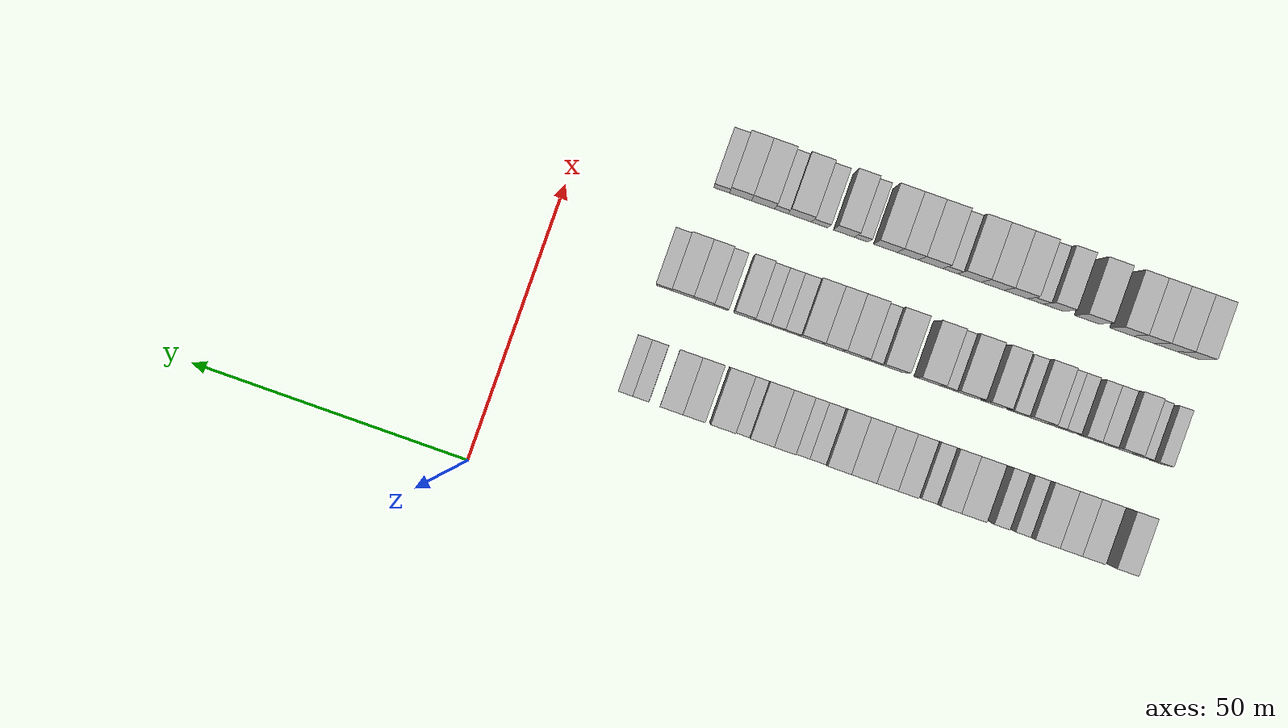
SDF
<sdf version="1.6">
 <world name="default">
  <model name="building_64">
   <static>1</static>
   <pose>25.0000 -109.6221 0 0.000000 0.000000 0.000000</pose>
   <link name="link">
    <pose>0 0 4.50 0 0 0</pose>
    <collision name="collision"><geometry><box><size>10.0000 3.7740 9.0000</size></box></geometry></collision>
    <visual name="visual">
     <cast_shadows>0</cast_shadows>
     <geometry><box><size>10.0000 3.7740 9.0000</size></box></geometry>
     <material>
      <script>
       <uri>model://HANNAS_wall/materials/scripts</uri>
       <uri>model://HANNAS_wall/materials/textures</uri>
       <name>vrc/HANNAS_wall</name>
      </script>
     </material>
    </visual>
   </link>
  </model>
  <model name="building_65">
   <static>1</static>
   <pose>25.0000 -103.6873 0 0.000000 0.000000 0.000000</pose>
   <link name="link">
    <pose>0 0 4.50 0 0 0</pose>
    <collision name="collision"><geometry><box><size>10.0000 4.0955 9.0000</size></box></geometry></collision>
    <visual name="visual">
     <cast_shadows>0</cast_shadows>
     <geometry><box><size>10.0000 4.0955 9.0000</size></box></geometry>
     <material>
      <script>
       <uri>model://HANNAS_wall/materials/scripts</uri>
       <uri>model://HANNAS_wall/materials/textures</uri>
       <name>vrc/HANNAS_wall</name>
      </script>
     </material>
    </visual>
   </link>
  </model>
  <model name="building_66">
   <static>1</static>
   <pose>25.0000 -99.6868 0 0.000000 0.000000 0.000000</pose>
   <link name="link">
    <pose>0 0 4.50 0 0 0</pose>
    <collision name="collision"><geometry><box><size>10.0000 3.9055 9.0000</size></box></geometry></collision>
    <visual name="visual">
     <cast_shadows>0</cast_shadows>
     <geometry><box><size>10.0000 3.9055 9.0000</size></box></geometry>
     <material>
      <script>
       <uri>model://HANNAS_wall/materials/scripts</uri>
       <uri>model://HANNAS_wall/materials/textures</uri>
       <name>vrc/HANNAS_wall</name>
      </script>
     </material>
    </visual>
   </link>
  </model>
  <model name="building_67">
   <static>1</static>
   <pose>25.0000 -95.5836 0 0.000000 0.000000 0.000000</pose>
   <link name="link">
    <pose>0 0 4.50 0 0 0</pose>
    <collision name="collision"><geometry><box><size>10.0000 4.3011 9.0000</size></box></geometry></collision>
    <visual name="visual">
     <cast_shadows>0</cast_shadows>
     <geometry><box><size>10.0000 4.3011 9.0000</size></box></geometry>
     <material>
      <script>
       <uri>model://HANNAS_wall/materials/scripts</uri>
       <uri>model://HANNAS_wall/materials/textures</uri>
       <name>vrc/HANNAS_wall</name>
      </script>
     </material>
    </visual>
   </link>
  </model>
  <model name="building_68">
   <static>1</static>
   <pose>25.0000 -92.0838 0 0.000000 0.000000 0.000000</pose>
   <link name="link">
    <pose>0 0 3.00 0 0 0</pose>
    <collision name="collision"><geometry><box><size>10.0000 2.6984 6.0000</size></box></geometry></collision>
    <visual name="visual">
     <cast_shadows>0</cast_shadows>
     <geometry><box><size>10.0000 2.6984 6.0000</size></box></geometry>
     <material>
      <script>
       <uri>model://HANNAS_wall/materials/scripts</uri>
       <uri>model://HANNAS_wall/materials/textures</uri>
       <name>vrc/HANNAS_wall</name>
      </script>
     </material>
    </visual>
   </link>
  </model>
  <model name="building_69">
   <static>1</static>
   <pose>25.0000 -88.3511 0 0.000000 0.000000 0.000000</pose>
   <link name="link">
    <pose>0 0 3.00 0 0 0</pose>
    <collision name="collision"><geometry><box><size>10.0000 2.7671 6.0000</size></box></geometry></collision>
    <visual name="visual">
     <cast_shadows>0</cast_shadows>
     <geometry><box><size>10.0000 2.7671 6.0000</size></box></geometry>
     <material>
      <script>
       <uri>model://HANNAS_wall/materials/scripts</uri>
       <uri>model://HANNAS_wall/materials/textures</uri>
       <name>vrc/HANNAS_wall</name>
      </script>
     </material>
    </visual>
   </link>
  </model>
  <model name="building_70">
   <static>1</static>
   <pose>25.0000 -82.7500 0 0.000000 0.000000 0.000000</pose>
   <link name="link">
    <pose>0 0 4.50 0 0 0</pose>
    <collision name="collision"><geometry><box><size>10.0000 4.4350 9.0000</size></box></geometry></collision>
    <visual name="visual">
     <cast_shadows>0</cast_shadows>
     <geometry><box><size>10.0000 4.4350 9.0000</size></box></geometry>
     <material>
      <script>
       <uri>model://HANNAS_wall/materials/scripts</uri>
       <uri>model://HANNAS_wall/materials/textures</uri>
       <name>vrc/HANNAS_wall</name>
      </script>
     </material>
    </visual>
   </link>
  </model>
  <model name="building_71">
   <static>1</static>
   <pose>25.0000 -78.7082 0 0.000000 0.000000 0.000000</pose>
   <link name="link">
    <pose>0 0 4.50 0 0 0</pose>
    <collision name="collision"><geometry><box><size>10.0000 3.6486 9.0000</size></box></geometry></collision>
    <visual name="visual">
     <cast_shadows>0</cast_shadows>
     <geometry><box><size>10.0000 3.6486 9.0000</size></box></geometry>
     <material>
      <script>
       <uri>model://HANNAS_wall/materials/scripts</uri>
       <uri>model://HANNAS_wall/materials/textures</uri>
       <name>vrc/HANNAS_wall</name>
      </script>
     </material>
    </visual>
   </link>
  </model>
  <model name="building_72">
   <static>1</static>
   <pose>25.0000 -75.4955 0 0.000000 0.000000 0.000000</pose>
   <link name="link">
    <pose>0 0 3.00 0 0 0</pose>
    <collision name="collision"><geometry><box><size>10.0000 2.7766 6.0000</size></box></geometry></collision>
    <visual name="visual">
     <cast_shadows>0</cast_shadows>
     <geometry><box><size>10.0000 2.7766 6.0000</size></box></geometry>
     <material>
      <script>
       <uri>model://HANNAS_wall/materials/scripts</uri>
       <uri>model://HANNAS_wall/materials/textures</uri>
       <name>vrc/HANNAS_wall</name>
      </script>
     </material>
    </visual>
   </link>
  </model>
  <model name="building_73">
   <static>1</static>
   <pose>25.0000 -71.2920 0 0.000000 0.000000 0.000000</pose>
   <link name="link">
    <pose>0 0 4.50 0 0 0</pose>
    <collision name="collision"><geometry><box><size>10.0000 3.6304 9.0000</size></box></geometry></collision>
    <visual name="visual">
     <cast_shadows>0</cast_shadows>
     <geometry><box><size>10.0000 3.6304 9.0000</size></box></geometry>
     <material>
      <script>
       <uri>model://HANNAS_wall/materials/scripts</uri>
       <uri>model://HANNAS_wall/materials/textures</uri>
       <name>vrc/HANNAS_wall</name>
      </script>
     </material>
    </visual>
   </link>
  </model>
  <model name="building_74">
   <static>1</static>
   <pose>25.0000 -67.5900 0 0.000000 0.000000 0.000000</pose>
   <link name="link">
    <pose>0 0 4.50 0 0 0</pose>
    <collision name="collision"><geometry><box><size>10.0000 3.7736 9.0000</size></box></geometry></collision>
    <visual name="visual">
     <cast_shadows>0</cast_shadows>
     <geometry><box><size>10.0000 3.7736 9.0000</size></box></geometry>
     <material>
      <script>
       <uri>model://HANNAS_wall/materials/scripts</uri>
       <uri>model://HANNAS_wall/materials/textures</uri>
       <name>vrc/HANNAS_wall</name>
      </script>
     </material>
    </visual>
   </link>
  </model>
  <model name="building_75">
   <static>1</static>
   <pose>25.0000 -63.4945 0 0.000000 0.000000 0.000000</pose>
   <link name="link">
    <pose>0 0 4.50 0 0 0</pose>
    <collision name="collision"><geometry><box><size>10.0000 4.4175 9.0000</size></box></geometry></collision>
    <visual name="visual">
     <cast_shadows>0</cast_shadows>
     <geometry><box><size>10.0000 4.4175 9.0000</size></box></geometry>
     <material>
      <script>
       <uri>model://HANNAS_wall/materials/scripts</uri>
       <uri>model://HANNAS_wall/materials/textures</uri>
       <name>vrc/HANNAS_wall</name>
      </script>
     </material>
    </visual>
   </link>
  </model>
  <model name="building_76">
   <static>1</static>
   <pose>25.0000 -59.2358 0 0.000000 0.000000 0.000000</pose>
   <link name="link">
    <pose>0 0 4.50 0 0 0</pose>
    <collision name="collision"><geometry><box><size>10.0000 4.0998 9.0000</size></box></geometry></collision>
    <visual name="visual">
     <cast_shadows>0</cast_shadows>
     <geometry><box><size>10.0000 4.0998 9.0000</size></box></geometry>
     <material>
      <script>
       <uri>model://HANNAS_wall/materials/scripts</uri>
       <uri>model://HANNAS_wall/materials/textures</uri>
       <name>vrc/HANNAS_wall</name>
      </script>
     </material>
    </visual>
   </link>
  </model>
  <model name="building_77">
   <static>1</static>
   <pose>25.0000 -55.7464 0 0.000000 0.000000 0.000000</pose>
   <link name="link">
    <pose>0 0 3.00 0 0 0</pose>
    <collision name="collision"><geometry><box><size>10.0000 2.8791 6.0000</size></box></geometry></collision>
    <visual name="visual">
     <cast_shadows>0</cast_shadows>
     <geometry><box><size>10.0000 2.8791 6.0000</size></box></geometry>
     <material>
      <script>
       <uri>model://HANNAS_wall/materials/scripts</uri>
       <uri>model://HANNAS_wall/materials/textures</uri>
       <name>vrc/HANNAS_wall</name>
      </script>
     </material>
    </visual>
   </link>
  </model>
  <model name="building_78">
   <static>1</static>
   <pose>25.0000 -52.9494 0 0.000000 0.000000 0.000000</pose>
   <link name="link">
    <pose>0 0 3.00 0 0 0</pose>
    <collision name="collision"><geometry><box><size>10.0000 2.7149 6.0000</size></box></geometry></collision>
    <visual name="visual">
     <cast_shadows>0</cast_shadows>
     <geometry><box><size>10.0000 2.7149 6.0000</size></box></geometry>
     <material>
      <script>
       <uri>model://HANNAS_wall/materials/scripts</uri>
       <uri>model://HANNAS_wall/materials/textures</uri>
       <name>vrc/HANNAS_wall</name>
      </script>
     </material>
    </visual>
   </link>
  </model>
  <model name="building_79">
   <static>1</static>
   <pose>25.0000 -49.6958 0 0.000000 0.000000 0.000000</pose>
   <link name="link">
    <pose>0 0 4.50 0 0 0</pose>
    <collision name="collision"><geometry><box><size>10.0000 3.7923 9.0000</size></box></geometry></collision>
    <visual name="visual">
     <cast_shadows>0</cast_shadows>
     <geometry><box><size>10.0000 3.7923 9.0000</size></box></geometry>
     <material>
      <script>
       <uri>model://HANNAS_wall/materials/scripts</uri>
       <uri>model://HANNAS_wall/materials/textures</uri>
       <name>vrc/HANNAS_wall</name>
      </script>
     </material>
    </visual>
   </link>
  </model>
  <model name="building_80">
   <static>1</static>
   <pose>25.0000 -45.7286 0 0.000000 0.000000 0.000000</pose>
   <link name="link">
    <pose>0 0 4.50 0 0 0</pose>
    <collision name="collision"><geometry><box><size>10.0000 4.1421 9.0000</size></box></geometry></collision>
    <visual name="visual">
     <cast_shadows>0</cast_shadows>
     <geometry><box><size>10.0000 4.1421 9.0000</size></box></geometry>
     <material>
      <script>
       <uri>model://HANNAS_wall/materials/scripts</uri>
       <uri>model://HANNAS_wall/materials/textures</uri>
       <name>vrc/HANNAS_wall</name>
      </script>
     </material>
    </visual>
   </link>
  </model>
  <model name="building_81">
   <static>1</static>
   <pose>25.0000 -42.3730 0 0.000000 0.000000 0.000000</pose>
   <link name="link">
    <pose>0 0 3.00 0 0 0</pose>
    <collision name="collision"><geometry><box><size>10.0000 2.5691 6.0000</size></box></geometry></collision>
    <visual name="visual">
     <cast_shadows>0</cast_shadows>
     <geometry><box><size>10.0000 2.5691 6.0000</size></box></geometry>
     <material>
      <script>
       <uri>model://HANNAS_wall/materials/scripts</uri>
       <uri>model://HANNAS_wall/materials/textures</uri>
       <name>vrc/HANNAS_wall</name>
      </script>
     </material>
    </visual>
   </link>
  </model>
  <model name="building_82">
   <static>1</static>
   <pose>25.0000 -38.9134 0 0.000000 0.000000 0.000000</pose>
   <link name="link">
    <pose>0 0 4.50 0 0 0</pose>
    <collision name="collision"><geometry><box><size>10.0000 4.3500 9.0000</size></box></geometry></collision>
    <visual name="visual">
     <cast_shadows>0</cast_shadows>
     <geometry><box><size>10.0000 4.3500 9.0000</size></box></geometry>
     <material>
      <script>
       <uri>model://HANNAS_wall/materials/scripts</uri>
       <uri>model://HANNAS_wall/materials/textures</uri>
       <name>vrc/HANNAS_wall</name>
      </script>
     </material>
    </visual>
   </link>
  </model>
  <model name="building_83">
   <static>1</static>
   <pose>25.0000 -33.7965 0 0.000000 0.000000 0.000000</pose>
   <link name="link">
    <pose>0 0 4.50 0 0 0</pose>
    <collision name="collision"><geometry><box><size>10.0000 3.8838 9.0000</size></box></geometry></collision>
    <visual name="visual">
     <cast_shadows>0</cast_shadows>
     <geometry><box><size>10.0000 3.8838 9.0000</size></box></geometry>
     <material>
      <script>
       <uri>model://HANNAS_wall/materials/scripts</uri>
       <uri>model://HANNAS_wall/materials/textures</uri>
       <name>vrc/HANNAS_wall</name>
      </script>
     </material>
    </visual>
   </link>
  </model>
  <model name="building_84">
   <static>1</static>
   <pose>25.0000 -29.8450 0 0.000000 0.000000 0.000000</pose>
   <link name="link">
    <pose>0 0 4.50 0 0 0</pose>
    <collision name="collision"><geometry><box><size>10.0000 4.0192 9.0000</size></box></geometry></collision>
    <visual name="visual">
     <cast_shadows>0</cast_shadows>
     <geometry><box><size>10.0000 4.0192 9.0000</size></box></geometry>
     <material>
      <script>
       <uri>model://HANNAS_wall/materials/scripts</uri>
       <uri>model://HANNAS_wall/materials/textures</uri>
       <name>vrc/HANNAS_wall</name>
      </script>
     </material>
    </visual>
   </link>
  </model>
  <model name="building_85">
   <static>1</static>
   <pose>25.0000 -24.4008 0 0.000000 0.000000 0.000000</pose>
   <link name="link">
    <pose>0 0 3.00 0 0 0</pose>
    <collision name="collision"><geometry><box><size>10.0000 2.8693 6.0000</size></box></geometry></collision>
    <visual name="visual">
     <cast_shadows>0</cast_shadows>
     <geometry><box><size>10.0000 2.8693 6.0000</size></box></geometry>
     <material>
      <script>
       <uri>model://HANNAS_wall/materials/scripts</uri>
       <uri>model://HANNAS_wall/materials/textures</uri>
       <name>vrc/HANNAS_wall</name>
      </script>
     </material>
    </visual>
   </link>
  </model>
  <model name="building_86">
   <static>1</static>
   <pose>25.0000 -21.6892 0 0.000000 0.000000 0.000000</pose>
   <link name="link">
    <pose>0 0 3.00 0 0 0</pose>
    <collision name="collision"><geometry><box><size>10.0000 2.5539 6.0000</size></box></geometry></collision>
    <visual name="visual">
     <cast_shadows>0</cast_shadows>
     <geometry><box><size>10.0000 2.5539 6.0000</size></box></geometry>
     <material>
      <script>
       <uri>model://HANNAS_wall/materials/scripts</uri>
       <uri>model://HANNAS_wall/materials/textures</uri>
       <name>vrc/HANNAS_wall</name>
      </script>
     </material>
    </visual>
   </link>
  </model>
  <model name="building_226">
   <static>1</static>
   <pose>44.0000 -110.7635 0 0.000000 0.000000 0.000000</pose>
   <link name="link">
    <pose>0 0 3.00 0 0 0</pose>
    <collision name="collision"><geometry><box><size>10.0000 2.4472 6.0000</size></box></geometry></collision>
    <visual name="visual">
     <cast_shadows>0</cast_shadows>
     <geometry><box><size>10.0000 2.4472 6.0000</size></box></geometry>
     <material>
      <script>
       <uri>model://HANNAS_wall/materials/scripts</uri>
       <uri>model://HANNAS_wall/materials/textures</uri>
       <name>vrc/HANNAS_wall</name>
      </script>
     </material>
    </visual>
   </link>
  </model>
  <model name="building_227">
   <static>1</static>
   <pose>44.0000 -107.2013 0 0.000000 0.000000 0.000000</pose>
   <link name="link">
    <pose>0 0 3.00 0 0 0</pose>
    <collision name="collision"><geometry><box><size>10.0000 2.6774 6.0000</size></box></geometry></collision>
    <visual name="visual">
     <cast_shadows>0</cast_shadows>
     <geometry><box><size>10.0000 2.6774 6.0000</size></box></geometry>
     <material>
      <script>
       <uri>model://HANNAS_wall/materials/scripts</uri>
       <uri>model://HANNAS_wall/materials/textures</uri>
       <name>vrc/HANNAS_wall</name>
      </script>
     </material>
    </visual>
   </link>
  </model>
  <model name="building_228">
   <static>1</static>
   <pose>44.0000 -104.0514 0 0.000000 0.000000 0.000000</pose>
   <link name="link">
    <pose>0 0 4.50 0 0 0</pose>
    <collision name="collision"><geometry><box><size>10.0000 3.6223 9.0000</size></box></geometry></collision>
    <visual name="visual">
     <cast_shadows>0</cast_shadows>
     <geometry><box><size>10.0000 3.6223 9.0000</size></box></geometry>
     <material>
      <script>
       <uri>model://HANNAS_wall/materials/scripts</uri>
       <uri>model://HANNAS_wall/materials/textures</uri>
       <name>vrc/HANNAS_wall</name>
      </script>
     </material>
    </visual>
   </link>
  </model>
  <model name="building_229">
   <static>1</static>
   <pose>44.0000 -100.8225 0 0.000000 0.000000 0.000000</pose>
   <link name="link">
    <pose>0 0 3.00 0 0 0</pose>
    <collision name="collision"><geometry><box><size>10.0000 2.8355 6.0000</size></box></geometry></collision>
    <visual name="visual">
     <cast_shadows>0</cast_shadows>
     <geometry><box><size>10.0000 2.8355 6.0000</size></box></geometry>
     <material>
      <script>
       <uri>model://HANNAS_wall/materials/scripts</uri>
       <uri>model://HANNAS_wall/materials/textures</uri>
       <name>vrc/HANNAS_wall</name>
      </script>
     </material>
    </visual>
   </link>
  </model>
  <model name="building_230">
   <static>1</static>
   <pose>44.0000 -98.0344 0 0.000000 0.000000 0.000000</pose>
   <link name="link">
    <pose>0 0 3.00 0 0 0</pose>
    <collision name="collision"><geometry><box><size>10.0000 2.7408 6.0000</size></box></geometry></collision>
    <visual name="visual">
     <cast_shadows>0</cast_shadows>
     <geometry><box><size>10.0000 2.7408 6.0000</size></box></geometry>
     <material>
      <script>
       <uri>model://HANNAS_wall/materials/scripts</uri>
       <uri>model://HANNAS_wall/materials/textures</uri>
       <name>vrc/HANNAS_wall</name>
      </script>
     </material>
    </visual>
   </link>
  </model>
  <model name="building_231">
   <static>1</static>
   <pose>44.0000 -94.4016 0 0.000000 0.000000 0.000000</pose>
   <link name="link">
    <pose>0 0 3.00 0 0 0</pose>
    <collision name="collision"><geometry><box><size>10.0000 2.5247 6.0000</size></box></geometry></collision>
    <visual name="visual">
     <cast_shadows>0</cast_shadows>
     <geometry><box><size>10.0000 2.5247 6.0000</size></box></geometry>
     <material>
      <script>
       <uri>model://HANNAS_wall/materials/scripts</uri>
       <uri>model://HANNAS_wall/materials/textures</uri>
       <name>vrc/HANNAS_wall</name>
      </script>
     </material>
    </visual>
   </link>
  </model>
  <model name="building_232">
   <static>1</static>
   <pose>44.0000 -91.9055 0 0.000000 0.000000 0.000000</pose>
   <link name="link">
    <pose>0 0 3.00 0 0 0</pose>
    <collision name="collision"><geometry><box><size>10.0000 2.4676 6.0000</size></box></geometry></collision>
    <visual name="visual">
     <cast_shadows>0</cast_shadows>
     <geometry><box><size>10.0000 2.4676 6.0000</size></box></geometry>
     <material>
      <script>
       <uri>model://HANNAS_wall/materials/scripts</uri>
       <uri>model://HANNAS_wall/materials/textures</uri>
       <name>vrc/HANNAS_wall</name>
      </script>
     </material>
    </visual>
   </link>
  </model>
  <model name="building_233">
   <static>1</static>
   <pose>44.0000 -88.6048 0 0.000000 0.000000 0.000000</pose>
   <link name="link">
    <pose>0 0 4.50 0 0 0</pose>
    <collision name="collision"><geometry><box><size>10.0000 4.1337 9.0000</size></box></geometry></collision>
    <visual name="visual">
     <cast_shadows>0</cast_shadows>
     <geometry><box><size>10.0000 4.1337 9.0000</size></box></geometry>
     <material>
      <script>
       <uri>model://HANNAS_wall/materials/scripts</uri>
       <uri>model://HANNAS_wall/materials/textures</uri>
       <name>vrc/HANNAS_wall</name>
      </script>
     </material>
    </visual>
   </link>
  </model>
  <model name="building_234">
   <static>1</static>
   <pose>44.0000 -85.1858 0 0.000000 0.000000 0.000000</pose>
   <link name="link">
    <pose>0 0 3.00 0 0 0</pose>
    <collision name="collision"><geometry><box><size>10.0000 2.7043 6.0000</size></box></geometry></collision>
    <visual name="visual">
     <cast_shadows>0</cast_shadows>
     <geometry><box><size>10.0000 2.7043 6.0000</size></box></geometry>
     <material>
      <script>
       <uri>model://HANNAS_wall/materials/scripts</uri>
       <uri>model://HANNAS_wall/materials/textures</uri>
       <name>vrc/HANNAS_wall</name>
      </script>
     </material>
    </visual>
   </link>
  </model>
  <model name="building_235">
   <static>1</static>
   <pose>44.0000 -80.9944 0 0.000000 0.000000 0.000000</pose>
   <link name="link">
    <pose>0 0 4.50 0 0 0</pose>
    <collision name="collision"><geometry><box><size>10.0000 3.6784 9.0000</size></box></geometry></collision>
    <visual name="visual">
     <cast_shadows>0</cast_shadows>
     <geometry><box><size>10.0000 3.6784 9.0000</size></box></geometry>
     <material>
      <script>
       <uri>model://HANNAS_wall/materials/scripts</uri>
       <uri>model://HANNAS_wall/materials/textures</uri>
       <name>vrc/HANNAS_wall</name>
      </script>
     </material>
    </visual>
   </link>
  </model>
  <model name="building_236">
   <static>1</static>
   <pose>44.0000 -75.9364 0 0.000000 0.000000 0.000000</pose>
   <link name="link">
    <pose>0 0 4.50 0 0 0</pose>
    <collision name="collision"><geometry><box><size>10.0000 4.4376 9.0000</size></box></geometry></collision>
    <visual name="visual">
     <cast_shadows>0</cast_shadows>
     <geometry><box><size>10.0000 4.4376 9.0000</size></box></geometry>
     <material>
      <script>
       <uri>model://HANNAS_wall/materials/scripts</uri>
       <uri>model://HANNAS_wall/materials/textures</uri>
       <name>vrc/HANNAS_wall</name>
      </script>
     </material>
    </visual>
   </link>
  </model>
  <model name="building_237">
   <static>1</static>
   <pose>44.0000 -72.5169 0 0.000000 0.000000 0.000000</pose>
   <link name="link">
    <pose>0 0 3.00 0 0 0</pose>
    <collision name="collision"><geometry><box><size>10.0000 2.4015 6.0000</size></box></geometry></collision>
    <visual name="visual">
     <cast_shadows>0</cast_shadows>
     <geometry><box><size>10.0000 2.4015 6.0000</size></box></geometry>
     <material>
      <script>
       <uri>model://HANNAS_wall/materials/scripts</uri>
       <uri>model://HANNAS_wall/materials/textures</uri>
       <name>vrc/HANNAS_wall</name>
      </script>
     </material>
    </visual>
   </link>
  </model>
  <model name="building_238">
   <static>1</static>
   <pose>44.0000 -69.1546 0 0.000000 0.000000 0.000000</pose>
   <link name="link">
    <pose>0 0 4.50 0 0 0</pose>
    <collision name="collision"><geometry><box><size>10.0000 4.3231 9.0000</size></box></geometry></collision>
    <visual name="visual">
     <cast_shadows>0</cast_shadows>
     <geometry><box><size>10.0000 4.3231 9.0000</size></box></geometry>
     <material>
      <script>
       <uri>model://HANNAS_wall/materials/scripts</uri>
       <uri>model://HANNAS_wall/materials/textures</uri>
       <name>vrc/HANNAS_wall</name>
      </script>
     </material>
    </visual>
   </link>
  </model>
  <model name="building_239">
   <static>1</static>
   <pose>44.0000 -62.7959 0 0.000000 0.000000 0.000000</pose>
   <link name="link">
    <pose>0 0 4.50 0 0 0</pose>
    <collision name="collision"><geometry><box><size>10.0000 4.3944 9.0000</size></box></geometry></collision>
    <visual name="visual">
     <cast_shadows>0</cast_shadows>
     <geometry><box><size>10.0000 4.3944 9.0000</size></box></geometry>
     <material>
      <script>
       <uri>model://HANNAS_wall/materials/scripts</uri>
       <uri>model://HANNAS_wall/materials/textures</uri>
       <name>vrc/HANNAS_wall</name>
      </script>
     </material>
    </visual>
   </link>
  </model>
  <model name="building_240">
   <static>1</static>
   <pose>44.0000 -59.2972 0 0.000000 0.000000 0.000000</pose>
   <link name="link">
    <pose>0 0 3.00 0 0 0</pose>
    <collision name="collision"><geometry><box><size>10.0000 2.6030 6.0000</size></box></geometry></collision>
    <visual name="visual">
     <cast_shadows>0</cast_shadows>
     <geometry><box><size>10.0000 2.6030 6.0000</size></box></geometry>
     <material>
      <script>
       <uri>model://HANNAS_wall/materials/scripts</uri>
       <uri>model://HANNAS_wall/materials/textures</uri>
       <name>vrc/HANNAS_wall</name>
      </script>
     </material>
    </visual>
   </link>
  </model>
  <model name="building_241">
   <static>1</static>
   <pose>44.0000 -55.9504 0 0.000000 0.000000 0.000000</pose>
   <link name="link">
    <pose>0 0 4.50 0 0 0</pose>
    <collision name="collision"><geometry><box><size>10.0000 4.0905 9.0000</size></box></geometry></collision>
    <visual name="visual">
     <cast_shadows>0</cast_shadows>
     <geometry><box><size>10.0000 4.0905 9.0000</size></box></geometry>
     <material>
      <script>
       <uri>model://HANNAS_wall/materials/scripts</uri>
       <uri>model://HANNAS_wall/materials/textures</uri>
       <name>vrc/HANNAS_wall</name>
      </script>
     </material>
    </visual>
   </link>
  </model>
  <model name="building_242">
   <static>1</static>
   <pose>44.0000 -52.0184 0 0.000000 0.000000 0.000000</pose>
   <link name="link">
    <pose>0 0 4.50 0 0 0</pose>
    <collision name="collision"><geometry><box><size>10.0000 3.7735 9.0000</size></box></geometry></collision>
    <visual name="visual">
     <cast_shadows>0</cast_shadows>
     <geometry><box><size>10.0000 3.7735 9.0000</size></box></geometry>
     <material>
      <script>
       <uri>model://HANNAS_wall/materials/scripts</uri>
       <uri>model://HANNAS_wall/materials/textures</uri>
       <name>vrc/HANNAS_wall</name>
      </script>
     </material>
    </visual>
   </link>
  </model>
  <model name="building_243">
   <static>1</static>
   <pose>44.0000 -48.1277 0 0.000000 0.000000 0.000000</pose>
   <link name="link">
    <pose>0 0 4.50 0 0 0</pose>
    <collision name="collision"><geometry><box><size>10.0000 4.0078 9.0000</size></box></geometry></collision>
    <visual name="visual">
     <cast_shadows>0</cast_shadows>
     <geometry><box><size>10.0000 4.0078 9.0000</size></box></geometry>
     <material>
      <script>
       <uri>model://HANNAS_wall/materials/scripts</uri>
       <uri>model://HANNAS_wall/materials/textures</uri>
       <name>vrc/HANNAS_wall</name>
      </script>
     </material>
    </visual>
   </link>
  </model>
  <model name="building_244">
   <static>1</static>
   <pose>44.0000 -44.7148 0 0.000000 0.000000 0.000000</pose>
   <link name="link">
    <pose>0 0 3.00 0 0 0</pose>
    <collision name="collision"><geometry><box><size>10.0000 2.8179 6.0000</size></box></geometry></collision>
    <visual name="visual">
     <cast_shadows>0</cast_shadows>
     <geometry><box><size>10.0000 2.8179 6.0000</size></box></geometry>
     <material>
      <script>
       <uri>model://HANNAS_wall/materials/scripts</uri>
       <uri>model://HANNAS_wall/materials/textures</uri>
       <name>vrc/HANNAS_wall</name>
      </script>
     </material>
    </visual>
   </link>
  </model>
  <model name="building_245">
   <static>1</static>
   <pose>44.0000 -41.9692 0 0.000000 0.000000 0.000000</pose>
   <link name="link">
    <pose>0 0 3.00 0 0 0</pose>
    <collision name="collision"><geometry><box><size>10.0000 2.6734 6.0000</size></box></geometry></collision>
    <visual name="visual">
     <cast_shadows>0</cast_shadows>
     <geometry><box><size>10.0000 2.6734 6.0000</size></box></geometry>
     <material>
      <script>
       <uri>model://HANNAS_wall/materials/scripts</uri>
       <uri>model://HANNAS_wall/materials/textures</uri>
       <name>vrc/HANNAS_wall</name>
      </script>
     </material>
    </visual>
   </link>
  </model>
  <model name="building_246">
   <static>1</static>
   <pose>44.0000 -39.2762 0 0.000000 0.000000 0.000000</pose>
   <link name="link">
    <pose>0 0 3.00 0 0 0</pose>
    <collision name="collision"><geometry><box><size>10.0000 2.7127 6.0000</size></box></geometry></collision>
    <visual name="visual">
     <cast_shadows>0</cast_shadows>
     <geometry><box><size>10.0000 2.7127 6.0000</size></box></geometry>
     <material>
      <script>
       <uri>model://HANNAS_wall/materials/scripts</uri>
       <uri>model://HANNAS_wall/materials/textures</uri>
       <name>vrc/HANNAS_wall</name>
      </script>
     </material>
    </visual>
   </link>
  </model>
  <model name="building_247">
   <static>1</static>
   <pose>44.0000 -36.1088 0 0.000000 0.000000 0.000000</pose>
   <link name="link">
    <pose>0 0 4.50 0 0 0</pose>
    <collision name="collision"><geometry><box><size>10.0000 3.6220 9.0000</size></box></geometry></collision>
    <visual name="visual">
     <cast_shadows>0</cast_shadows>
     <geometry><box><size>10.0000 3.6220 9.0000</size></box></geometry>
     <material>
      <script>
       <uri>model://HANNAS_wall/materials/scripts</uri>
       <uri>model://HANNAS_wall/materials/textures</uri>
       <name>vrc/HANNAS_wall</name>
      </script>
     </material>
    </visual>
   </link>
  </model>
  <model name="building_248">
   <static>1</static>
   <pose>44.0000 -32.0017 0 0.000000 0.000000 0.000000</pose>
   <link name="link">
    <pose>0 0 3.00 0 0 0</pose>
    <collision name="collision"><geometry><box><size>10.0000 2.5923 6.0000</size></box></geometry></collision>
    <visual name="visual">
     <cast_shadows>0</cast_shadows>
     <geometry><box><size>10.0000 2.5923 6.0000</size></box></geometry>
     <material>
      <script>
       <uri>model://HANNAS_wall/materials/scripts</uri>
       <uri>model://HANNAS_wall/materials/textures</uri>
       <name>vrc/HANNAS_wall</name>
      </script>
     </material>
    </visual>
   </link>
  </model>
  <model name="building_249">
   <static>1</static>
   <pose>44.0000 -28.8916 0 0.000000 0.000000 0.000000</pose>
   <link name="link">
    <pose>0 0 4.50 0 0 0</pose>
    <collision name="collision"><geometry><box><size>10.0000 3.6279 9.0000</size></box></geometry></collision>
    <visual name="visual">
     <cast_shadows>0</cast_shadows>
     <geometry><box><size>10.0000 3.6279 9.0000</size></box></geometry>
     <material>
      <script>
       <uri>model://HANNAS_wall/materials/scripts</uri>
       <uri>model://HANNAS_wall/materials/textures</uri>
       <name>vrc/HANNAS_wall</name>
      </script>
     </material>
    </visual>
   </link>
  </model>
  <model name="building_250">
   <static>1</static>
   <pose>44.0000 -25.1684 0 0.000000 0.000000 0.000000</pose>
   <link name="link">
    <pose>0 0 4.50 0 0 0</pose>
    <collision name="collision"><geometry><box><size>10.0000 3.8186 9.0000</size></box></geometry></collision>
    <visual name="visual">
     <cast_shadows>0</cast_shadows>
     <geometry><box><size>10.0000 3.8186 9.0000</size></box></geometry>
     <material>
      <script>
       <uri>model://HANNAS_wall/materials/scripts</uri>
       <uri>model://HANNAS_wall/materials/textures</uri>
       <name>vrc/HANNAS_wall</name>
      </script>
     </material>
    </visual>
   </link>
  </model>
  <model name="building_251">
   <static>1</static>
   <pose>44.0000 -21.8153 0 0.000000 0.000000 0.000000</pose>
   <link name="link">
    <pose>0 0 3.00 0 0 0</pose>
    <collision name="collision"><geometry><box><size>10.0000 2.8876 6.0000</size></box></geometry></collision>
    <visual name="visual">
     <cast_shadows>0</cast_shadows>
     <geometry><box><size>10.0000 2.8876 6.0000</size></box></geometry>
     <material>
      <script>
       <uri>model://HANNAS_wall/materials/scripts</uri>
       <uri>model://HANNAS_wall/materials/textures</uri>
       <name>vrc/HANNAS_wall</name>
      </script>
     </material>
    </visual>
   </link>
  </model>
  <model name="building_408">
   <static>1</static>
   <pose>63.0000 -109.9310 0 0.000000 0.000000 0.000000</pose>
   <link name="link">
    <pose>0 0 4.50 0 0 0</pose>
    <collision name="collision"><geometry><box><size>10.0000 3.8343 9.0000</size></box></geometry></collision>
    <visual name="visual">
     <cast_shadows>0</cast_shadows>
     <geometry><box><size>10.0000 3.8343 9.0000</size></box></geometry>
     <material>
      <script>
       <uri>model://HANNAS_wall/materials/scripts</uri>
       <uri>model://HANNAS_wall/materials/textures</uri>
       <name>vrc/HANNAS_wall</name>
      </script>
     </material>
    </visual>
   </link>
  </model>
  <model name="building_409">
   <static>1</static>
   <pose>63.0000 -105.9161 0 0.000000 0.000000 0.000000</pose>
   <link name="link">
    <pose>0 0 4.50 0 0 0</pose>
    <collision name="collision"><geometry><box><size>10.0000 4.1956 9.0000</size></box></geometry></collision>
    <visual name="visual">
     <cast_shadows>0</cast_shadows>
     <geometry><box><size>10.0000 4.1956 9.0000</size></box></geometry>
     <material>
      <script>
       <uri>model://HANNAS_wall/materials/scripts</uri>
       <uri>model://HANNAS_wall/materials/textures</uri>
       <name>vrc/HANNAS_wall</name>
      </script>
     </material>
    </visual>
   </link>
  </model>
  <model name="building_410">
   <static>1</static>
   <pose>63.0000 -101.8284 0 0.000000 0.000000 0.000000</pose>
   <link name="link">
    <pose>0 0 4.50 0 0 0</pose>
    <collision name="collision"><geometry><box><size>10.0000 3.9796 9.0000</size></box></geometry></collision>
    <visual name="visual">
     <cast_shadows>0</cast_shadows>
     <geometry><box><size>10.0000 3.9796 9.0000</size></box></geometry>
     <material>
      <script>
       <uri>model://HANNAS_wall/materials/scripts</uri>
       <uri>model://HANNAS_wall/materials/textures</uri>
       <name>vrc/HANNAS_wall</name>
      </script>
     </material>
    </visual>
   </link>
  </model>
  <model name="building_411">
   <static>1</static>
   <pose>63.0000 -97.7929 0 0.000000 0.000000 0.000000</pose>
   <link name="link">
    <pose>0 0 4.50 0 0 0</pose>
    <collision name="collision"><geometry><box><size>10.0000 4.0914 9.0000</size></box></geometry></collision>
    <visual name="visual">
     <cast_shadows>0</cast_shadows>
     <geometry><box><size>10.0000 4.0914 9.0000</size></box></geometry>
     <material>
      <script>
       <uri>model://HANNAS_wall/materials/scripts</uri>
       <uri>model://HANNAS_wall/materials/textures</uri>
       <name>vrc/HANNAS_wall</name>
      </script>
     </material>
    </visual>
   </link>
  </model>
  <model name="building_412">
   <static>1</static>
   <pose>63.0000 -91.5379 0 0.000000 0.000000 0.000000</pose>
   <link name="link">
    <pose>0 0 4.50 0 0 0</pose>
    <collision name="collision"><geometry><box><size>10.0000 4.4186 9.0000</size></box></geometry></collision>
    <visual name="visual">
     <cast_shadows>0</cast_shadows>
     <geometry><box><size>10.0000 4.4186 9.0000</size></box></geometry>
     <material>
      <script>
       <uri>model://HANNAS_wall/materials/scripts</uri>
       <uri>model://HANNAS_wall/materials/textures</uri>
       <name>vrc/HANNAS_wall</name>
      </script>
     </material>
    </visual>
   </link>
  </model>
  <model name="building_413">
   <static>1</static>
   <pose>63.0000 -85.4947 0 0.000000 0.000000 0.000000</pose>
   <link name="link">
    <pose>0 0 4.50 0 0 0</pose>
    <collision name="collision"><geometry><box><size>10.0000 3.6678 9.0000</size></box></geometry></collision>
    <visual name="visual">
     <cast_shadows>0</cast_shadows>
     <geometry><box><size>10.0000 3.6678 9.0000</size></box></geometry>
     <material>
      <script>
       <uri>model://HANNAS_wall/materials/scripts</uri>
       <uri>model://HANNAS_wall/materials/textures</uri>
       <name>vrc/HANNAS_wall</name>
      </script>
     </material>
    </visual>
   </link>
  </model>
  <model name="building_414">
   <static>1</static>
   <pose>63.0000 -82.2575 0 0.000000 0.000000 0.000000</pose>
   <link name="link">
    <pose>0 0 3.00 0 0 0</pose>
    <collision name="collision"><geometry><box><size>10.0000 2.8066 6.0000</size></box></geometry></collision>
    <visual name="visual">
     <cast_shadows>0</cast_shadows>
     <geometry><box><size>10.0000 2.8066 6.0000</size></box></geometry>
     <material>
      <script>
       <uri>model://HANNAS_wall/materials/scripts</uri>
       <uri>model://HANNAS_wall/materials/textures</uri>
       <name>vrc/HANNAS_wall</name>
      </script>
     </material>
    </visual>
   </link>
  </model>
  <model name="building_415">
   <static>1</static>
   <pose>63.0000 -78.6810 0 0.000000 0.000000 0.000000</pose>
   <link name="link">
    <pose>0 0 4.50 0 0 0</pose>
    <collision name="collision"><geometry><box><size>10.0000 4.3464 9.0000</size></box></geometry></collision>
    <visual name="visual">
     <cast_shadows>0</cast_shadows>
     <geometry><box><size>10.0000 4.3464 9.0000</size></box></geometry>
     <material>
      <script>
       <uri>model://HANNAS_wall/materials/scripts</uri>
       <uri>model://HANNAS_wall/materials/textures</uri>
       <name>vrc/HANNAS_wall</name>
      </script>
     </material>
    </visual>
   </link>
  </model>
  <model name="building_416">
   <static>1</static>
   <pose>63.0000 -74.4384 0 0.000000 0.000000 0.000000</pose>
   <link name="link">
    <pose>0 0 4.50 0 0 0</pose>
    <collision name="collision"><geometry><box><size>10.0000 4.1387 9.0000</size></box></geometry></collision>
    <visual name="visual">
     <cast_shadows>0</cast_shadows>
     <geometry><box><size>10.0000 4.1387 9.0000</size></box></geometry>
     <material>
      <script>
       <uri>model://HANNAS_wall/materials/scripts</uri>
       <uri>model://HANNAS_wall/materials/textures</uri>
       <name>vrc/HANNAS_wall</name>
      </script>
     </material>
    </visual>
   </link>
  </model>
  <model name="building_417">
   <static>1</static>
   <pose>63.0000 -70.2422 0 0.000000 0.000000 0.000000</pose>
   <link name="link">
    <pose>0 0 4.50 0 0 0</pose>
    <collision name="collision"><geometry><box><size>10.0000 4.2538 9.0000</size></box></geometry></collision>
    <visual name="visual">
     <cast_shadows>0</cast_shadows>
     <geometry><box><size>10.0000 4.2538 9.0000</size></box></geometry>
     <material>
      <script>
       <uri>model://HANNAS_wall/materials/scripts</uri>
       <uri>model://HANNAS_wall/materials/textures</uri>
       <name>vrc/HANNAS_wall</name>
      </script>
     </material>
    </visual>
   </link>
  </model>
  <model name="building_418">
   <static>1</static>
   <pose>63.0000 -66.7744 0 0.000000 0.000000 0.000000</pose>
   <link name="link">
    <pose>0 0 3.00 0 0 0</pose>
    <collision name="collision"><geometry><box><size>10.0000 2.6817 6.0000</size></box></geometry></collision>
    <visual name="visual">
     <cast_shadows>0</cast_shadows>
     <geometry><box><size>10.0000 2.6817 6.0000</size></box></geometry>
     <material>
      <script>
       <uri>model://HANNAS_wall/materials/scripts</uri>
       <uri>model://HANNAS_wall/materials/textures</uri>
       <name>vrc/HANNAS_wall</name>
      </script>
     </material>
    </visual>
   </link>
  </model>
  <model name="building_419">
   <static>1</static>
   <pose>63.0000 -63.2305 0 0.000000 0.000000 0.000000</pose>
   <link name="link">
    <pose>0 0 4.50 0 0 0</pose>
    <collision name="collision"><geometry><box><size>10.0000 4.4062 9.0000</size></box></geometry></collision>
    <visual name="visual">
     <cast_shadows>0</cast_shadows>
     <geometry><box><size>10.0000 4.4062 9.0000</size></box></geometry>
     <material>
      <script>
       <uri>model://HANNAS_wall/materials/scripts</uri>
       <uri>model://HANNAS_wall/materials/textures</uri>
       <name>vrc/HANNAS_wall</name>
      </script>
     </material>
    </visual>
   </link>
  </model>
  <model name="building_420">
   <static>1</static>
   <pose>63.0000 -59.1016 0 0.000000 0.000000 0.000000</pose>
   <link name="link">
    <pose>0 0 4.50 0 0 0</pose>
    <collision name="collision"><geometry><box><size>10.0000 3.8515 9.0000</size></box></geometry></collision>
    <visual name="visual">
     <cast_shadows>0</cast_shadows>
     <geometry><box><size>10.0000 3.8515 9.0000</size></box></geometry>
     <material>
      <script>
       <uri>model://HANNAS_wall/materials/scripts</uri>
       <uri>model://HANNAS_wall/materials/textures</uri>
       <name>vrc/HANNAS_wall</name>
      </script>
     </material>
    </visual>
   </link>
  </model>
  <model name="building_421">
   <static>1</static>
   <pose>63.0000 -55.0577 0 0.000000 0.000000 0.000000</pose>
   <link name="link">
    <pose>0 0 4.50 0 0 0</pose>
    <collision name="collision"><geometry><box><size>10.0000 4.2364 9.0000</size></box></geometry></collision>
    <visual name="visual">
     <cast_shadows>0</cast_shadows>
     <geometry><box><size>10.0000 4.2364 9.0000</size></box></geometry>
     <material>
      <script>
       <uri>model://HANNAS_wall/materials/scripts</uri>
       <uri>model://HANNAS_wall/materials/textures</uri>
       <name>vrc/HANNAS_wall</name>
      </script>
     </material>
    </visual>
   </link>
  </model>
  <model name="building_422">
   <static>1</static>
   <pose>63.0000 -50.7193 0 0.000000 0.000000 0.000000</pose>
   <link name="link">
    <pose>0 0 3.00 0 0 0</pose>
    <collision name="collision"><geometry><box><size>10.0000 2.4404 6.0000</size></box></geometry></collision>
    <visual name="visual">
     <cast_shadows>0</cast_shadows>
     <geometry><box><size>10.0000 2.4404 6.0000</size></box></geometry>
     <material>
      <script>
       <uri>model://HANNAS_wall/materials/scripts</uri>
       <uri>model://HANNAS_wall/materials/textures</uri>
       <name>vrc/HANNAS_wall</name>
      </script>
     </material>
    </visual>
   </link>
  </model>
  <model name="building_423">
   <static>1</static>
   <pose>63.0000 -47.5919 0 0.000000 0.000000 0.000000</pose>
   <link name="link">
    <pose>0 0 4.50 0 0 0</pose>
    <collision name="collision"><geometry><box><size>10.0000 3.8143 9.0000</size></box></geometry></collision>
    <visual name="visual">
     <cast_shadows>0</cast_shadows>
     <geometry><box><size>10.0000 3.8143 9.0000</size></box></geometry>
     <material>
      <script>
       <uri>model://HANNAS_wall/materials/scripts</uri>
       <uri>model://HANNAS_wall/materials/textures</uri>
       <name>vrc/HANNAS_wall</name>
      </script>
     </material>
    </visual>
   </link>
  </model>
  <model name="building_424">
   <static>1</static>
   <pose>63.0000 -43.1931 0 0.000000 0.000000 0.000000</pose>
   <link name="link">
    <pose>0 0 3.00 0 0 0</pose>
    <collision name="collision"><geometry><box><size>10.0000 2.9834 6.0000</size></box></geometry></collision>
    <visual name="visual">
     <cast_shadows>0</cast_shadows>
     <geometry><box><size>10.0000 2.9834 6.0000</size></box></geometry>
     <material>
      <script>
       <uri>model://HANNAS_wall/materials/scripts</uri>
       <uri>model://HANNAS_wall/materials/textures</uri>
       <name>vrc/HANNAS_wall</name>
      </script>
     </material>
    </visual>
   </link>
  </model>
  <model name="building_425">
   <static>1</static>
   <pose>63.0000 -39.5755 0 0.000000 0.000000 0.000000</pose>
   <link name="link">
    <pose>0 0 4.50 0 0 0</pose>
    <collision name="collision"><geometry><box><size>10.0000 4.2518 9.0000</size></box></geometry></collision>
    <visual name="visual">
     <cast_shadows>0</cast_shadows>
     <geometry><box><size>10.0000 4.2518 9.0000</size></box></geometry>
     <material>
      <script>
       <uri>model://HANNAS_wall/materials/scripts</uri>
       <uri>model://HANNAS_wall/materials/textures</uri>
       <name>vrc/HANNAS_wall</name>
      </script>
     </material>
    </visual>
   </link>
  </model>
  <model name="building_426">
   <static>1</static>
   <pose>63.0000 -36.2420 0 0.000000 0.000000 0.000000</pose>
   <link name="link">
    <pose>0 0 3.00 0 0 0</pose>
    <collision name="collision"><geometry><box><size>10.0000 2.4152 6.0000</size></box></geometry></collision>
    <visual name="visual">
     <cast_shadows>0</cast_shadows>
     <geometry><box><size>10.0000 2.4152 6.0000</size></box></geometry>
     <material>
      <script>
       <uri>model://HANNAS_wall/materials/scripts</uri>
       <uri>model://HANNAS_wall/materials/textures</uri>
       <name>vrc/HANNAS_wall</name>
      </script>
     </material>
    </visual>
   </link>
  </model>
  <model name="building_427">
   <static>1</static>
   <pose>63.0000 -32.9205 0 0.000000 0.000000 0.000000</pose>
   <link name="link">
    <pose>0 0 4.50 0 0 0</pose>
    <collision name="collision"><geometry><box><size>10.0000 4.2278 9.0000</size></box></geometry></collision>
    <visual name="visual">
     <cast_shadows>0</cast_shadows>
     <geometry><box><size>10.0000 4.2278 9.0000</size></box></geometry>
     <material>
      <script>
       <uri>model://HANNAS_wall/materials/scripts</uri>
       <uri>model://HANNAS_wall/materials/textures</uri>
       <name>vrc/HANNAS_wall</name>
      </script>
     </material>
    </visual>
   </link>
  </model>
  <model name="building_428">
   <static>1</static>
   <pose>63.0000 -28.8428 0 0.000000 0.000000 0.000000</pose>
   <link name="link">
    <pose>0 0 4.50 0 0 0</pose>
    <collision name="collision"><geometry><box><size>10.0000 3.9277 9.0000</size></box></geometry></collision>
    <visual name="visual">
     <cast_shadows>0</cast_shadows>
     <geometry><box><size>10.0000 3.9277 9.0000</size></box></geometry>
     <material>
      <script>
       <uri>model://HANNAS_wall/materials/scripts</uri>
       <uri>model://HANNAS_wall/materials/textures</uri>
       <name>vrc/HANNAS_wall</name>
      </script>
     </material>
    </visual>
   </link>
  </model>
  <model name="building_429">
   <static>1</static>
   <pose>63.0000 -25.4535 0 0.000000 0.000000 0.000000</pose>
   <link name="link">
    <pose>0 0 3.00 0 0 0</pose>
    <collision name="collision"><geometry><box><size>10.0000 2.8508 6.0000</size></box></geometry></collision>
    <visual name="visual">
     <cast_shadows>0</cast_shadows>
     <geometry><box><size>10.0000 2.8508 6.0000</size></box></geometry>
     <material>
      <script>
       <uri>model://HANNAS_wall/materials/scripts</uri>
       <uri>model://HANNAS_wall/materials/textures</uri>
       <name>vrc/HANNAS_wall</name>
      </script>
     </material>
    </visual>
   </link>
  </model>
 </world>
</sdf>
